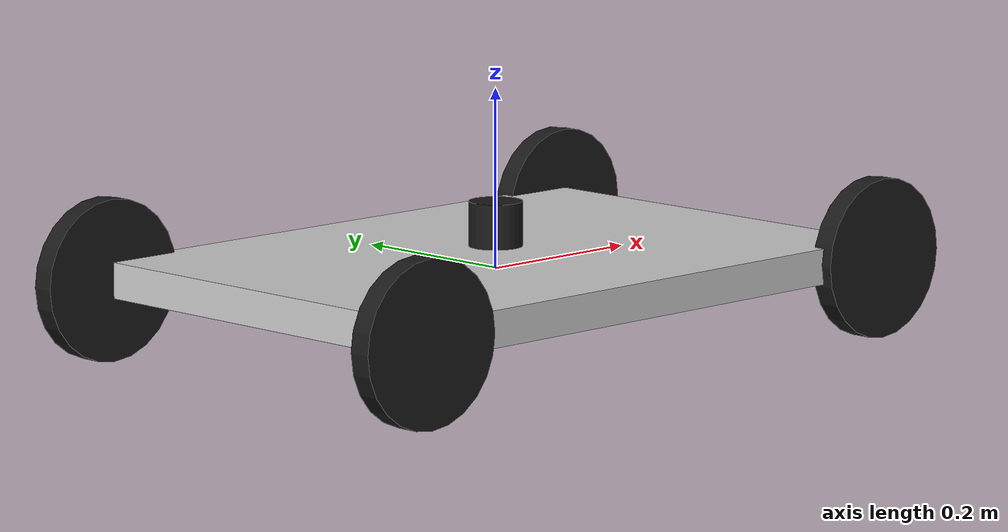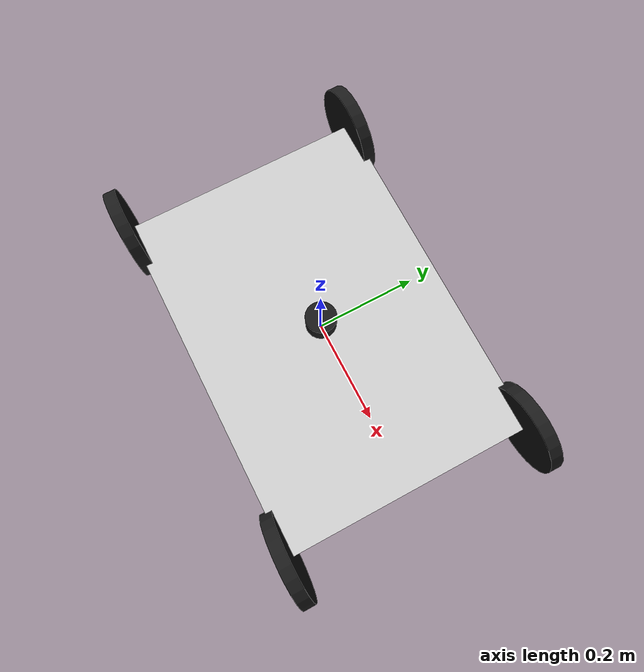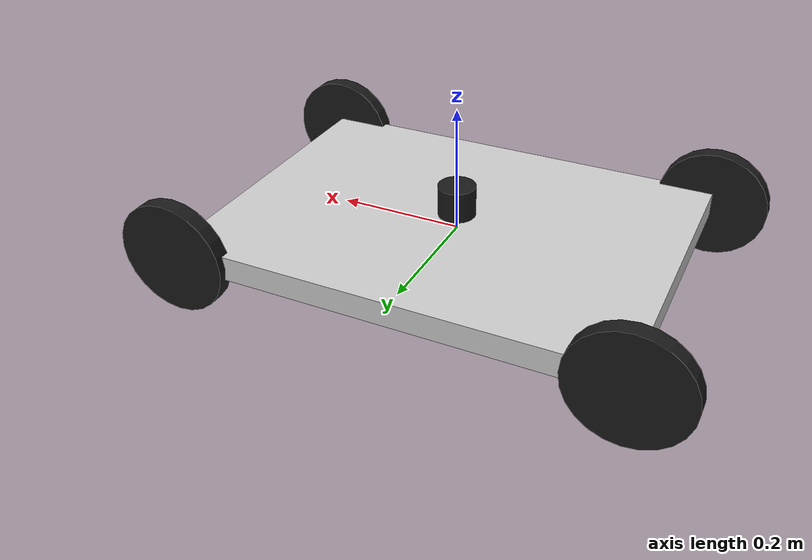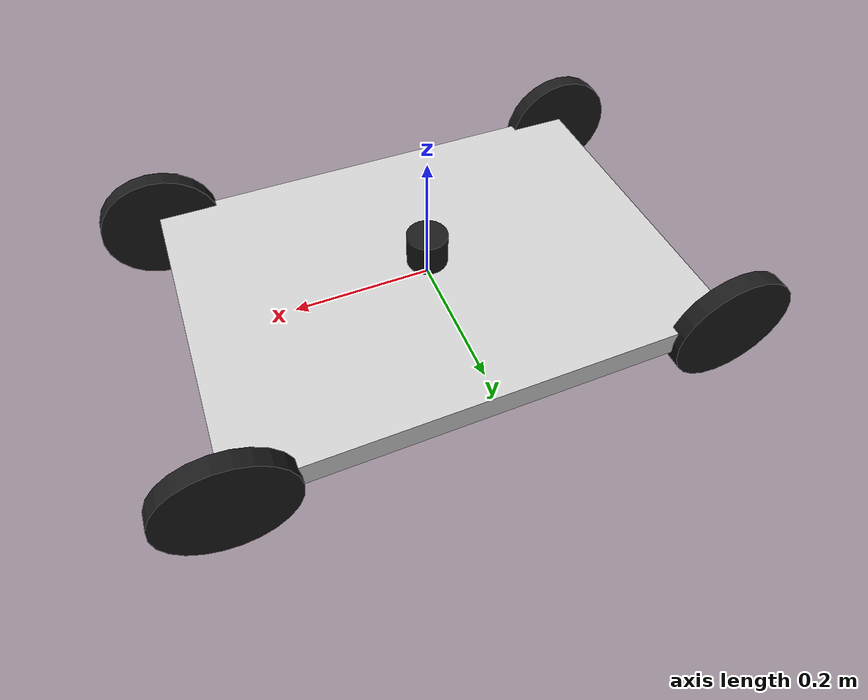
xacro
<?xml version="1.0"?>
<robot name="kerian" xmlns:xacro="http://www.ros.org/wiki/xacro">

	<xacro:include filename="$(find kerian_description)/urdf/kerian_base.xacro"/>
	<xacro:include filename="$(find kerian_description)/urdf/laser_gazebo.xacro"/>

	<xacro:property name="laser_offset_x" value="0.0"/>
	<xacro:property name="laser_offset_y" value="0"/>
	<xacro:property name="laser_offset_z" value="0.05"/>

	<kerian_base/>

        <joint name="laser_joint" type="fixed">
	    <origin xyz="${laser_offset_x} ${laser_offset_y} ${laser_offset_z}" rpy="0 0 0"/>
	    <parent link="base_footprint"/>
	    <child link="laser_link"></child>
        </joint>

<xacro:laser/>
</robot>

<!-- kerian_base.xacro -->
<robot name="kerian" xmlns:xacro="http://www.ros.org/wiki/xacro">

<xacro:property name="M_PI" value="3.1415926"/>

<xacro:property name="wheel_radius" value="0.09"/>
<xacro:property name="wheel_length" value="0.025"/>
<xacro:property name="wheel_joint_x" value="0.35"/>
<xacro:property name="wheel_joint_y" value="0.25"/>
<xacro:property name="wheel_joint_z" value="0"/>
<xacro:property name="wheel_mass" value="0.50"/>
<xacro:property name="wheel_inertia_xx" value="${wheel_mass/12*(3*wheel_radius*wheel_radius+wheel_length*wheel_length)}"/>
<xacro:property name="wheel_inertia_yy" value="${wheel_mass/12*(3*wheel_radius*wheel_radius+wheel_length*wheel_length)}"/>
<xacro:property name="wheel_inertia_zz" value="${wheel_mass/2*wheel_radius*wheel_radius}"/>

<xacro:property name="base_length" value="0.5"/>
<xacro:property name="base_width" value="0.7"/>
<xacro:property name="base_height" value="0.04"/>
<xacro:property name="base_mass"  value="1.0"/>
<xacro:property name="base_inertia_xx" value="${base_mass/12*(base_height*base_height+base_width*base_width)}"/>
<xacro:property name="base_inertia_yy" value="${base_mass/12*(base_length*base_length+base_width*base_width)}"/>
<xacro:property name="base_inertia_zz" value="${base_mass/12*(base_length*base_length+base_height*base_height)}"/>

<material name="black">
	<color rgba="0.1 0.1 0.1 0.90"/>
</material>

<material name="gray">
	<color rgba="0.8 0.8 0.8 1"/>
</material>

<xacro:macro name="wheel" params="prefix reflect_x reflect_y">
	<joint name="${prefix}_wheel_joint" type="continuous">
		<origin xyz="${reflect_x*wheel_joint_x} ${reflect_y*wheel_joint_y} ${wheel_joint_z}"></origin>
		<parent link="base_footprint"></parent>
		<child link="${prefix}_wheel_link"></child>
		<axis xyz="0 1 0"/>
	</joint>

	<transmission name="${prefix}_wheel_joint_trans">
			<type>transmission_interface/SimpleTransimssion</type>
			<joint name="${prefix}_wheel_joint"/>
			<actuator name="${prefix}_wheel_joint_motor">
				<hardwareInterface>VelocityJointInterface</hardwareInterface>
				<mechanicalReduction>1</mechanicalReduction>
			</actuator>
	</transmission>

	<link name="${prefix}_wheel_link">
		<inertial>
				<mass value="${wheel_mass}"/>
				<origin xyz="0 0 0"/>
				<inertia ixx="${wheel_inertia_xx}" ixy="0.0" ixz="0.0"
						 iyy="${wheel_inertia_yy}" iyz="0.0" izz="${wheel_inertia_zz}">
				</inertia>
		</inertial>

		<visual>
			<origin xyz="0 0 0" rpy="${M_PI/2} 0 0"/>
			<geometry>
				<cylinder radius="${wheel_radius}" length="${wheel_length}"/>
			</geometry>

			<material name="black"></material>
		</visual>
		<collision>
			<origin xyz="0 0 0" rpy="${M_PI/2} 0 0"/>
			<geometry>
				<cylinder radius="${wheel_radius}" length="${wheel_length}"/>
			</geometry>
		</collision>
	</link>

	<gazebo reference="${prefix}_wheel_link">
			<material>Gazebo/Black</material>
	</gazebo>
</xacro:macro>

<xacro:macro name="kerian_base">
	<link name="base_footprint">
		<visual>
			<origin xyz="0 0 0" rpy="0 0 0"/>
			<geometry>
				<box size="0.001 0.001 0.001"/>
			</geometry>
		</visual>
	</link>

	<joint name="base_footprint_joint" type="fixed">
		<origin xyz="0 0 0" rpy="0 0 0"/>
		<parent link="base_footprint"/>
		<child link="base_link"/>
	</joint>

	<link name="base_link">
		<inertial>
				<origin xyz="0 0 0"/>
				<mass value="${base_mass}"/>
				<inertia ixx="${base_inertia_xx}" ixy="0"  ixz="0"
						 iyy="${base_inertia_yy}" iyz="0"  izz="${base_inertia_zz}">
				</inertia>
		</inertial>

		<visual>
			<origin xyz="0 0 0" rpy="0 0 0"/>
			<geometry>
				<box size="${base_width} ${base_length} ${base_height}"/>
			</geometry>
			<material name="gray"></material>
		</visual>

		<collision>
			<origin xyz="0 0 0"/>
			<geometry>
				<box size="${base_width} ${base_length} ${base_height}"/>
			</geometry>
		</collision>
	</link>

	<gazebo reference="base_link">
			<material>Gazebo/Blue</material>
	</gazebo>

	<wheel prefix="base_fl" reflect_x="1" reflect_y="1"/>
	<wheel prefix="base_fr" reflect_x="1" reflect_y="-1"/>
	<wheel prefix="base_bl" reflect_x="-1" reflect_y="1"/>
	<wheel prefix="base_br" reflect_x="-1" reflect_y="-1"/>

    <gazebo>
		<plugin name="skid_steer_drive_controller" filename="libgazebo_ros_skid_steer_drive.so">
			<rosDebugLevel>Debug</rosDebugLevel>
			<publishWheelTF>true</publishWheelTF>
			<robotNamespace>/</robotNamespace>
			<publishTf>1</publishTf>
			<publishWheelJointState>true</publishWheelJointState>
			<alwaysOn>true</alwaysOn>
			<updateRate>100.0</updateRate>
			<robotNamespace>/</robotNamespace>
			<leftFrontJoint>base_fl_wheel_joint</leftFrontJoint>
			<rightFrontJoint>base_fr_wheel_joint</rightFrontJoint>
			<leftRearJoint>base_bl_wheel_joint</leftRearJoint>
			<rightRearJoint>base_br_wheel_joint</rightRearJoint>
			<wheelSeparation>${wheel_joint_y*2}</wheelSeparation>
			<wheelDiameter>${2*wheel_radius}</wheelDiameter>
			<wheelAcceleration>1.8</wheelAcceleration>
			<torque>1</torque>
			<robotBaseFrame>base_footprint</robotBaseFrame>
			<topicName>cmd_vel</topicName>
			<broadcastTF>1</broadcastTF>
			<odometryFrame>odom</odometryFrame>
			<odometryTopic>odom</odometryTopic>
		</plugin>
	</gazebo>

</xacro:macro>

</robot>

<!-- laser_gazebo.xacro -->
<robot xmlns:xacro="http://www.ros.org/wiki/xacro" name="laser">
	<xacro:property name="laser_length" value="0.05"/>
	<xacro:property name="laser_radius" value="0.03"/>
	<xacro:property name="laser_mass" value="0.05"/>

	<xacro:macro name="laser">
		<link name="laser_link">
			<inertial>
				<mass value="${laser_mass}"></mass>
				<origin xyz="0 0 0"></origin>
				<inertia ixx="0.001" ixy="0.0" ixz="0"
						 iyy="0.001" iyz="0" izz="0.001">
				</inertia>
			</inertial>

			<visual>
				<origin xyz="0 0 0"/>
				<geometry>
					<cylinder length="${laser_length}" radius="${laser_radius}"/>
				</geometry>
				<material name="black"/>
			</visual>

			<collision>
				<origin xyz="0 0 0" rpy="0 0 0"/>
				<geometry>
					<cylinder length="${laser_length}" radius="${laser_radius}"/>
				</geometry>
			</collision>
		</link>

		<gazebo reference="laser_link">
			<material>Gazebo/Black</material>
		</gazebo>

		<gazebo reference="laser_link">
			<sensor type="ray" name="rplidar">
				<pose>0 0 0 0 0 0</pose>
				<visualize>false</visualize>
				<update_rate>5.5</update_rate>
				<ray>
					<scan>
						<horizontal>
							<samples>360</samples>
							<resolution>1</resolution>
							<min_angle>-3</min_angle>
							<max_angle>3</max_angle>
						</horizontal>
					</scan>

					<range>
						<min>0.10</min>
						<max>6.0</max>
						<resolution>0.01</resolution>
					</range>
					<noise>
						<type>gaussian</type>
						<mean>0.0</mean>
						<stddev>0.01</stddev>
					</noise>
				</ray>

				<plugin name="gazebo_rplidar"  filename="libgazebo_ros_laser.so">
					<topicName>/scan</topicName>
					<frameName>laser_link</frameName>
				</plugin>
			</sensor>
		</gazebo>
	</xacro:macro>
</robot>
